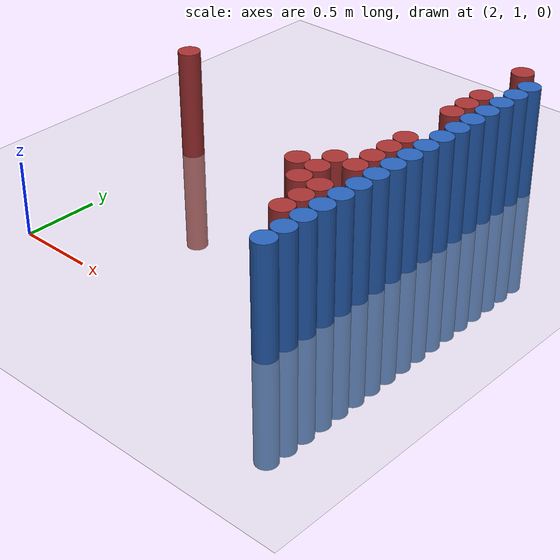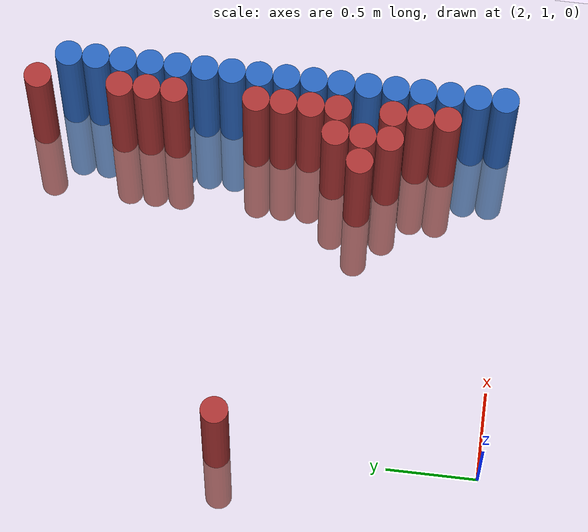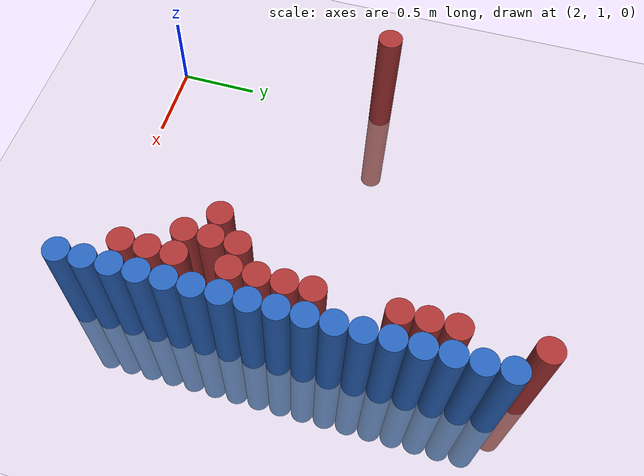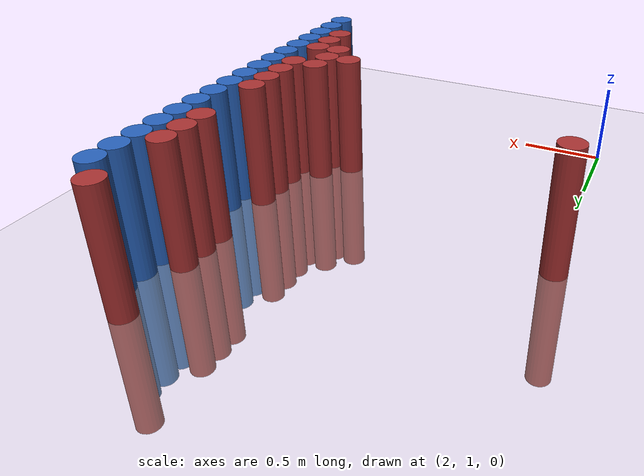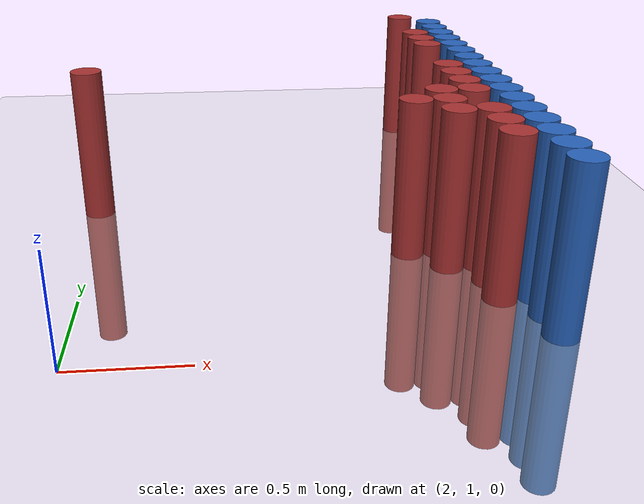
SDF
<sdf version="1.6">
 <world name="default">
  <model name="ground_plane">
   <static>1</static>
   <link name="link">
    <collision name="collision">
     <geometry><plane><normal>0 0 1</normal><size>100 100</size></plane></geometry>
     <surface><friction><ode><mu>100</mu><mu2>50</mu2></ode></friction></surface>
    </collision>
    <visual name="visual">
     <cast_shadows>0</cast_shadows>
     <geometry><plane><normal>0 0 1</normal><size>100 100</size></plane></geometry>
     <material>
      <script><uri>file://media/materials/scripts/gazebo.material</uri><name>Gazebo/Grey</name></script>
     </material>
    </visual>
   </link>
  </model>
  <model name="unit_cylinder_130">
   <static>1</static>
   <pose>3.925000 1.225000 0.000000 0.000000 0.000000 0.000000</pose>
   <link name="link">
    <inertial>
     <mass>1</mass>
     <inertia><ixx>0.145833</ixx><ixy>0</ixy><ixz>0</ixz><iyy>0.145833</iyy><iyz>0</iyz><izz>0.125</izz></inertia>
    </inertial>
    <collision name="collision">
     <geometry><cylinder><radius>0.075000</radius><length>1.5</length></cylinder></geometry>
    </collision>
    <visual name="visual">
     <geometry><cylinder><radius>0.075000</radius><length>1.5</length></cylinder></geometry>
     <material>
      <ambient>0.152000 0.379000 0.720000 1</ambient>
      <diffuse>0.152000 0.379000 0.720000 1</diffuse>
     </material>
     <material>
      <script><name>Gazebo/Grey</name><uri>file://media/materials/scripts/gazebo.material</uri></script>
     </material>
    </visual>
   </link>
  </model>
  <model name="unit_cylinder_132">
   <static>1</static>
   <pose>3.925000 1.375000 0.000000 0.000000 0.000000 0.000000</pose>
   <link name="link">
    <inertial>
     <mass>1</mass>
     <inertia><ixx>0.145833</ixx><ixy>0</ixy><ixz>0</ixz><iyy>0.145833</iyy><iyz>0</iyz><izz>0.125</izz></inertia>
    </inertial>
    <collision name="collision">
     <geometry><cylinder><radius>0.075000</radius><length>1.5</length></cylinder></geometry>
    </collision>
    <visual name="visual">
     <geometry><cylinder><radius>0.075000</radius><length>1.5</length></cylinder></geometry>
     <material>
      <ambient>0.152000 0.379000 0.720000 1</ambient>
      <diffuse>0.152000 0.379000 0.720000 1</diffuse>
     </material>
     <material>
      <script><name>Gazebo/Grey</name><uri>file://media/materials/scripts/gazebo.material</uri></script>
     </material>
    </visual>
   </link>
  </model>
  <model name="unit_cylinder_134">
   <static>1</static>
   <pose>3.925000 1.525000 0.000000 0.000000 0.000000 0.000000</pose>
   <link name="link">
    <inertial>
     <mass>1</mass>
     <inertia><ixx>0.145833</ixx><ixy>0</ixy><ixz>0</ixz><iyy>0.145833</iyy><iyz>0</iyz><izz>0.125</izz></inertia>
    </inertial>
    <collision name="collision">
     <geometry><cylinder><radius>0.075000</radius><length>1.5</length></cylinder></geometry>
    </collision>
    <visual name="visual">
     <geometry><cylinder><radius>0.075000</radius><length>1.5</length></cylinder></geometry>
     <material>
      <ambient>0.152000 0.379000 0.720000 1</ambient>
      <diffuse>0.152000 0.379000 0.720000 1</diffuse>
     </material>
     <material>
      <script><name>Gazebo/Grey</name><uri>file://media/materials/scripts/gazebo.material</uri></script>
     </material>
    </visual>
   </link>
  </model>
  <model name="unit_cylinder_136">
   <static>1</static>
   <pose>3.925000 1.675000 0.000000 0.000000 0.000000 0.000000</pose>
   <link name="link">
    <inertial>
     <mass>1</mass>
     <inertia><ixx>0.145833</ixx><ixy>0</ixy><ixz>0</ixz><iyy>0.145833</iyy><iyz>0</iyz><izz>0.125</izz></inertia>
    </inertial>
    <collision name="collision">
     <geometry><cylinder><radius>0.075000</radius><length>1.5</length></cylinder></geometry>
    </collision>
    <visual name="visual">
     <geometry><cylinder><radius>0.075000</radius><length>1.5</length></cylinder></geometry>
     <material>
      <ambient>0.152000 0.379000 0.720000 1</ambient>
      <diffuse>0.152000 0.379000 0.720000 1</diffuse>
     </material>
     <material>
      <script><name>Gazebo/Grey</name><uri>file://media/materials/scripts/gazebo.material</uri></script>
     </material>
    </visual>
   </link>
  </model>
  <model name="unit_cylinder_138">
   <static>1</static>
   <pose>3.925000 1.825000 0.000000 0.000000 0.000000 0.000000</pose>
   <link name="link">
    <inertial>
     <mass>1</mass>
     <inertia><ixx>0.145833</ixx><ixy>0</ixy><ixz>0</ixz><iyy>0.145833</iyy><iyz>0</iyz><izz>0.125</izz></inertia>
    </inertial>
    <collision name="collision">
     <geometry><cylinder><radius>0.075000</radius><length>1.5</length></cylinder></geometry>
    </collision>
    <visual name="visual">
     <geometry><cylinder><radius>0.075000</radius><length>1.5</length></cylinder></geometry>
     <material>
      <ambient>0.152000 0.379000 0.720000 1</ambient>
      <diffuse>0.152000 0.379000 0.720000 1</diffuse>
     </material>
     <material>
      <script><name>Gazebo/Grey</name><uri>file://media/materials/scripts/gazebo.material</uri></script>
     </material>
    </visual>
   </link>
  </model>
  <model name="unit_cylinder_140">
   <static>1</static>
   <pose>3.925000 1.975000 0.000000 0.000000 0.000000 0.000000</pose>
   <link name="link">
    <inertial>
     <mass>1</mass>
     <inertia><ixx>0.145833</ixx><ixy>0</ixy><ixz>0</ixz><iyy>0.145833</iyy><iyz>0</iyz><izz>0.125</izz></inertia>
    </inertial>
    <collision name="collision">
     <geometry><cylinder><radius>0.075000</radius><length>1.5</length></cylinder></geometry>
    </collision>
    <visual name="visual">
     <geometry><cylinder><radius>0.075000</radius><length>1.5</length></cylinder></geometry>
     <material>
      <ambient>0.152000 0.379000 0.720000 1</ambient>
      <diffuse>0.152000 0.379000 0.720000 1</diffuse>
     </material>
     <material>
      <script><name>Gazebo/Grey</name><uri>file://media/materials/scripts/gazebo.material</uri></script>
     </material>
    </visual>
   </link>
  </model>
  <model name="unit_cylinder_142">
   <static>1</static>
   <pose>3.925000 2.125000 0.000000 0.000000 0.000000 0.000000</pose>
   <link name="link">
    <inertial>
     <mass>1</mass>
     <inertia><ixx>0.145833</ixx><ixy>0</ixy><ixz>0</ixz><iyy>0.145833</iyy><iyz>0</iyz><izz>0.125</izz></inertia>
    </inertial>
    <collision name="collision">
     <geometry><cylinder><radius>0.075000</radius><length>1.5</length></cylinder></geometry>
    </collision>
    <visual name="visual">
     <geometry><cylinder><radius>0.075000</radius><length>1.5</length></cylinder></geometry>
     <material>
      <ambient>0.152000 0.379000 0.720000 1</ambient>
      <diffuse>0.152000 0.379000 0.720000 1</diffuse>
     </material>
     <material>
      <script><name>Gazebo/Grey</name><uri>file://media/materials/scripts/gazebo.material</uri></script>
     </material>
    </visual>
   </link>
  </model>
  <model name="unit_cylinder_144">
   <static>1</static>
   <pose>3.925000 2.275000 0.000000 0.000000 0.000000 0.000000</pose>
   <link name="link">
    <inertial>
     <mass>1</mass>
     <inertia><ixx>0.145833</ixx><ixy>0</ixy><ixz>0</ixz><iyy>0.145833</iyy><iyz>0</iyz><izz>0.125</izz></inertia>
    </inertial>
    <collision name="collision">
     <geometry><cylinder><radius>0.075000</radius><length>1.5</length></cylinder></geometry>
    </collision>
    <visual name="visual">
     <geometry><cylinder><radius>0.075000</radius><length>1.5</length></cylinder></geometry>
     <material>
      <ambient>0.152000 0.379000 0.720000 1</ambient>
      <diffuse>0.152000 0.379000 0.720000 1</diffuse>
     </material>
     <material>
      <script><name>Gazebo/Grey</name><uri>file://media/materials/scripts/gazebo.material</uri></script>
     </material>
    </visual>
   </link>
  </model>
  <model name="unit_cylinder_146">
   <static>1</static>
   <pose>3.925000 2.425000 0.000000 0.000000 0.000000 0.000000</pose>
   <link name="link">
    <inertial>
     <mass>1</mass>
     <inertia><ixx>0.145833</ixx><ixy>0</ixy><ixz>0</ixz><iyy>0.145833</iyy><iyz>0</iyz><izz>0.125</izz></inertia>
    </inertial>
    <collision name="collision">
     <geometry><cylinder><radius>0.075000</radius><length>1.5</length></cylinder></geometry>
    </collision>
    <visual name="visual">
     <geometry><cylinder><radius>0.075000</radius><length>1.5</length></cylinder></geometry>
     <material>
      <ambient>0.152000 0.379000 0.720000 1</ambient>
      <diffuse>0.152000 0.379000 0.720000 1</diffuse>
     </material>
     <material>
      <script><name>Gazebo/Grey</name><uri>file://media/materials/scripts/gazebo.material</uri></script>
     </material>
    </visual>
   </link>
  </model>
  <model name="unit_cylinder_148">
   <static>1</static>
   <pose>3.925000 2.575000 0.000000 0.000000 0.000000 0.000000</pose>
   <link name="link">
    <inertial>
     <mass>1</mass>
     <inertia><ixx>0.145833</ixx><ixy>0</ixy><ixz>0</ixz><iyy>0.145833</iyy><iyz>0</iyz><izz>0.125</izz></inertia>
    </inertial>
    <collision name="collision">
     <geometry><cylinder><radius>0.075000</radius><length>1.5</length></cylinder></geometry>
    </collision>
    <visual name="visual">
     <geometry><cylinder><radius>0.075000</radius><length>1.5</length></cylinder></geometry>
     <material>
      <ambient>0.152000 0.379000 0.720000 1</ambient>
      <diffuse>0.152000 0.379000 0.720000 1</diffuse>
     </material>
     <material>
      <script><name>Gazebo/Grey</name><uri>file://media/materials/scripts/gazebo.material</uri></script>
     </material>
    </visual>
   </link>
  </model>
  <model name="unit_cylinder_150">
   <static>1</static>
   <pose>3.925000 2.725000 0.000000 0.000000 0.000000 0.000000</pose>
   <link name="link">
    <inertial>
     <mass>1</mass>
     <inertia><ixx>0.145833</ixx><ixy>0</ixy><ixz>0</ixz><iyy>0.145833</iyy><iyz>0</iyz><izz>0.125</izz></inertia>
    </inertial>
    <collision name="collision">
     <geometry><cylinder><radius>0.075000</radius><length>1.5</length></cylinder></geometry>
    </collision>
    <visual name="visual">
     <geometry><cylinder><radius>0.075000</radius><length>1.5</length></cylinder></geometry>
     <material>
      <ambient>0.152000 0.379000 0.720000 1</ambient>
      <diffuse>0.152000 0.379000 0.720000 1</diffuse>
     </material>
     <material>
      <script><name>Gazebo/Grey</name><uri>file://media/materials/scripts/gazebo.material</uri></script>
     </material>
    </visual>
   </link>
  </model>
  <model name="unit_cylinder_152">
   <static>1</static>
   <pose>3.925000 2.875000 0.000000 0.000000 0.000000 0.000000</pose>
   <link name="link">
    <inertial>
     <mass>1</mass>
     <inertia><ixx>0.145833</ixx><ixy>0</ixy><ixz>0</ixz><iyy>0.145833</iyy><iyz>0</iyz><izz>0.125</izz></inertia>
    </inertial>
    <collision name="collision">
     <geometry><cylinder><radius>0.075000</radius><length>1.5</length></cylinder></geometry>
    </collision>
    <visual name="visual">
     <geometry><cylinder><radius>0.075000</radius><length>1.5</length></cylinder></geometry>
     <material>
      <ambient>0.152000 0.379000 0.720000 1</ambient>
      <diffuse>0.152000 0.379000 0.720000 1</diffuse>
     </material>
     <material>
      <script><name>Gazebo/Grey</name><uri>file://media/materials/scripts/gazebo.material</uri></script>
     </material>
    </visual>
   </link>
  </model>
  <model name="unit_cylinder_154">
   <static>1</static>
   <pose>3.925000 3.025000 0.000000 0.000000 0.000000 0.000000</pose>
   <link name="link">
    <inertial>
     <mass>1</mass>
     <inertia><ixx>0.145833</ixx><ixy>0</ixy><ixz>0</ixz><iyy>0.145833</iyy><iyz>0</iyz><izz>0.125</izz></inertia>
    </inertial>
    <collision name="collision">
     <geometry><cylinder><radius>0.075000</radius><length>1.5</length></cylinder></geometry>
    </collision>
    <visual name="visual">
     <geometry><cylinder><radius>0.075000</radius><length>1.5</length></cylinder></geometry>
     <material>
      <ambient>0.152000 0.379000 0.720000 1</ambient>
      <diffuse>0.152000 0.379000 0.720000 1</diffuse>
     </material>
     <material>
      <script><name>Gazebo/Grey</name><uri>file://media/materials/scripts/gazebo.material</uri></script>
     </material>
    </visual>
   </link>
  </model>
  <model name="unit_cylinder_156">
   <static>1</static>
   <pose>3.925000 3.175000 0.000000 0.000000 0.000000 0.000000</pose>
   <link name="link">
    <inertial>
     <mass>1</mass>
     <inertia><ixx>0.145833</ixx><ixy>0</ixy><ixz>0</ixz><iyy>0.145833</iyy><iyz>0</iyz><izz>0.125</izz></inertia>
    </inertial>
    <collision name="collision">
     <geometry><cylinder><radius>0.075000</radius><length>1.5</length></cylinder></geometry>
    </collision>
    <visual name="visual">
     <geometry><cylinder><radius>0.075000</radius><length>1.5</length></cylinder></geometry>
     <material>
      <ambient>0.152000 0.379000 0.720000 1</ambient>
      <diffuse>0.152000 0.379000 0.720000 1</diffuse>
     </material>
     <material>
      <script><name>Gazebo/Grey</name><uri>file://media/materials/scripts/gazebo.material</uri></script>
     </material>
    </visual>
   </link>
  </model>
  <model name="unit_cylinder_158">
   <static>1</static>
   <pose>3.925000 3.325000 0.000000 0.000000 0.000000 0.000000</pose>
   <link name="link">
    <inertial>
     <mass>1</mass>
     <inertia><ixx>0.145833</ixx><ixy>0</ixy><ixz>0</ixz><iyy>0.145833</iyy><iyz>0</iyz><izz>0.125</izz></inertia>
    </inertial>
    <collision name="collision">
     <geometry><cylinder><radius>0.075000</radius><length>1.5</length></cylinder></geometry>
    </collision>
    <visual name="visual">
     <geometry><cylinder><radius>0.075000</radius><length>1.5</length></cylinder></geometry>
     <material>
      <ambient>0.152000 0.379000 0.720000 1</ambient>
      <diffuse>0.152000 0.379000 0.720000 1</diffuse>
     </material>
     <material>
      <script><name>Gazebo/Grey</name><uri>file://media/materials/scripts/gazebo.material</uri></script>
     </material>
    </visual>
   </link>
  </model>
  <model name="unit_cylinder_160">
   <static>1</static>
   <pose>3.925000 3.475000 0.000000 0.000000 0.000000 0.000000</pose>
   <link name="link">
    <inertial>
     <mass>1</mass>
     <inertia><ixx>0.145833</ixx><ixy>0</ixy><ixz>0</ixz><iyy>0.145833</iyy><iyz>0</iyz><izz>0.125</izz></inertia>
    </inertial>
    <collision name="collision">
     <geometry><cylinder><radius>0.075000</radius><length>1.5</length></cylinder></geometry>
    </collision>
    <visual name="visual">
     <geometry><cylinder><radius>0.075000</radius><length>1.5</length></cylinder></geometry>
     <material>
      <ambient>0.152000 0.379000 0.720000 1</ambient>
      <diffuse>0.152000 0.379000 0.720000 1</diffuse>
     </material>
     <material>
      <script><name>Gazebo/Grey</name><uri>file://media/materials/scripts/gazebo.material</uri></script>
     </material>
    </visual>
   </link>
  </model>
  <model name="unit_cylinder_379">
   <static>1</static>
   <pose>1.975000 2.425000 0.000000 0.000000 0.000000 0.000000</pose>
   <link name="link">
    <inertial>
     <mass>1</mass>
     <inertia><ixx>0.145833</ixx><ixy>0</ixy><ixz>0</ixz><iyy>0.145833</iyy><iyz>0</iyz><izz>0.125</izz></inertia>
    </inertial>
    <collision name="collision">
     <geometry><cylinder><radius>0.075000</radius><length>1.5</length></cylinder></geometry>
    </collision>
    <visual name="visual">
     <geometry><cylinder><radius>0.075000</radius><length>1.5</length></cylinder></geometry>
     <material>
      <ambient>0.648000 0.192000 0.192000 1</ambient>
      <diffuse>0.648000 0.192000 0.192000 1</diffuse>
     </material>
     <material>
      <script><name>Gazebo/Grey</name><uri>file://media/materials/scripts/gazebo.material</uri></script>
     </material>
    </visual>
   </link>
  </model>
  <model name="unit_cylinder_410">
   <static>1</static>
   <pose>3.475000 1.825000 0.000000 0.000000 0.000000 0.000000</pose>
   <link name="link">
    <inertial>
     <mass>1</mass>
     <inertia><ixx>0.145833</ixx><ixy>0</ixy><ixz>0</ixz><iyy>0.145833</iyy><iyz>0</iyz><izz>0.125</izz></inertia>
    </inertial>
    <collision name="collision">
     <geometry><cylinder><radius>0.075000</radius><length>1.5</length></cylinder></geometry>
    </collision>
    <visual name="visual">
     <geometry><cylinder><radius>0.075000</radius><length>1.5</length></cylinder></geometry>
     <material>
      <ambient>0.648000 0.192000 0.192000 1</ambient>
      <diffuse>0.648000 0.192000 0.192000 1</diffuse>
     </material>
     <material>
      <script><name>Gazebo/Grey</name><uri>file://media/materials/scripts/gazebo.material</uri></script>
     </material>
    </visual>
   </link>
  </model>
  <model name="unit_cylinder_415">
   <static>1</static>
   <pose>3.625000 1.675000 0.000000 0.000000 0.000000 0.000000</pose>
   <link name="link">
    <inertial>
     <mass>1</mass>
     <inertia><ixx>0.145833</ixx><ixy>0</ixy><ixz>0</ixz><iyy>0.145833</iyy><iyz>0</iyz><izz>0.125</izz></inertia>
    </inertial>
    <collision name="collision">
     <geometry><cylinder><radius>0.075000</radius><length>1.5</length></cylinder></geometry>
    </collision>
    <visual name="visual">
     <geometry><cylinder><radius>0.075000</radius><length>1.5</length></cylinder></geometry>
     <material>
      <ambient>0.648000 0.192000 0.192000 1</ambient>
      <diffuse>0.648000 0.192000 0.192000 1</diffuse>
     </material>
     <material>
      <script><name>Gazebo/Grey</name><uri>file://media/materials/scripts/gazebo.material</uri></script>
     </material>
    </visual>
   </link>
  </model>
  <model name="unit_cylinder_416">
   <static>1</static>
   <pose>3.625000 1.825000 0.000000 0.000000 0.000000 0.000000</pose>
   <link name="link">
    <inertial>
     <mass>1</mass>
     <inertia><ixx>0.145833</ixx><ixy>0</ixy><ixz>0</ixz><iyy>0.145833</iyy><iyz>0</iyz><izz>0.125</izz></inertia>
    </inertial>
    <collision name="collision">
     <geometry><cylinder><radius>0.075000</radius><length>1.5</length></cylinder></geometry>
    </collision>
    <visual name="visual">
     <geometry><cylinder><radius>0.075000</radius><length>1.5</length></cylinder></geometry>
     <material>
      <ambient>0.648000 0.192000 0.192000 1</ambient>
      <diffuse>0.648000 0.192000 0.192000 1</diffuse>
     </material>
     <material>
      <script><name>Gazebo/Grey</name><uri>file://media/materials/scripts/gazebo.material</uri></script>
     </material>
    </visual>
   </link>
  </model>
  <model name="unit_cylinder_417">
   <static>1</static>
   <pose>3.625000 1.975000 0.000000 0.000000 0.000000 0.000000</pose>
   <link name="link">
    <inertial>
     <mass>1</mass>
     <inertia><ixx>0.145833</ixx><ixy>0</ixy><ixz>0</ixz><iyy>0.145833</iyy><iyz>0</iyz><izz>0.125</izz></inertia>
    </inertial>
    <collision name="collision">
     <geometry><cylinder><radius>0.075000</radius><length>1.5</length></cylinder></geometry>
    </collision>
    <visual name="visual">
     <geometry><cylinder><radius>0.075000</radius><length>1.5</length></cylinder></geometry>
     <material>
      <ambient>0.648000 0.192000 0.192000 1</ambient>
      <diffuse>0.648000 0.192000 0.192000 1</diffuse>
     </material>
     <material>
      <script><name>Gazebo/Grey</name><uri>file://media/materials/scripts/gazebo.material</uri></script>
     </material>
    </visual>
   </link>
  </model>
  <model name="unit_cylinder_426">
   <static>1</static>
   <pose>3.775000 1.375000 0.000000 0.000000 0.000000 0.000000</pose>
   <link name="link">
    <inertial>
     <mass>1</mass>
     <inertia><ixx>0.145833</ixx><ixy>0</ixy><ixz>0</ixz><iyy>0.145833</iyy><iyz>0</iyz><izz>0.125</izz></inertia>
    </inertial>
    <collision name="collision">
     <geometry><cylinder><radius>0.075000</radius><length>1.5</length></cylinder></geometry>
    </collision>
    <visual name="visual">
     <geometry><cylinder><radius>0.075000</radius><length>1.5</length></cylinder></geometry>
     <material>
      <ambient>0.648000 0.192000 0.192000 1</ambient>
      <diffuse>0.648000 0.192000 0.192000 1</diffuse>
     </material>
     <material>
      <script><name>Gazebo/Grey</name><uri>file://media/materials/scripts/gazebo.material</uri></script>
     </material>
    </visual>
   </link>
  </model>
  <model name="unit_cylinder_427">
   <static>1</static>
   <pose>3.775000 1.525000 0.000000 0.000000 0.000000 0.000000</pose>
   <link name="link">
    <inertial>
     <mass>1</mass>
     <inertia><ixx>0.145833</ixx><ixy>0</ixy><ixz>0</ixz><iyy>0.145833</iyy><iyz>0</iyz><izz>0.125</izz></inertia>
    </inertial>
    <collision name="collision">
     <geometry><cylinder><radius>0.075000</radius><length>1.5</length></cylinder></geometry>
    </collision>
    <visual name="visual">
     <geometry><cylinder><radius>0.075000</radius><length>1.5</length></cylinder></geometry>
     <material>
      <ambient>0.648000 0.192000 0.192000 1</ambient>
      <diffuse>0.648000 0.192000 0.192000 1</diffuse>
     </material>
     <material>
      <script><name>Gazebo/Grey</name><uri>file://media/materials/scripts/gazebo.material</uri></script>
     </material>
    </visual>
   </link>
  </model>
  <model name="unit_cylinder_428">
   <static>1</static>
   <pose>3.775000 1.675000 0.000000 0.000000 0.000000 0.000000</pose>
   <link name="link">
    <inertial>
     <mass>1</mass>
     <inertia><ixx>0.145833</ixx><ixy>0</ixy><ixz>0</ixz><iyy>0.145833</iyy><iyz>0</iyz><izz>0.125</izz></inertia>
    </inertial>
    <collision name="collision">
     <geometry><cylinder><radius>0.075000</radius><length>1.5</length></cylinder></geometry>
    </collision>
    <visual name="visual">
     <geometry><cylinder><radius>0.075000</radius><length>1.5</length></cylinder></geometry>
     <material>
      <ambient>0.648000 0.192000 0.192000 1</ambient>
      <diffuse>0.648000 0.192000 0.192000 1</diffuse>
     </material>
     <material>
      <script><name>Gazebo/Grey</name><uri>file://media/materials/scripts/gazebo.material</uri></script>
     </material>
    </visual>
   </link>
  </model>
  <model name="unit_cylinder_429">
   <static>1</static>
   <pose>3.775000 1.975000 0.000000 0.000000 0.000000 0.000000</pose>
   <link name="link">
    <inertial>
     <mass>1</mass>
     <inertia><ixx>0.145833</ixx><ixy>0</ixy><ixz>0</ixz><iyy>0.145833</iyy><iyz>0</iyz><izz>0.125</izz></inertia>
    </inertial>
    <collision name="collision">
     <geometry><cylinder><radius>0.075000</radius><length>1.5</length></cylinder></geometry>
    </collision>
    <visual name="visual">
     <geometry><cylinder><radius>0.075000</radius><length>1.5</length></cylinder></geometry>
     <material>
      <ambient>0.648000 0.192000 0.192000 1</ambient>
      <diffuse>0.648000 0.192000 0.192000 1</diffuse>
     </material>
     <material>
      <script><name>Gazebo/Grey</name><uri>file://media/materials/scripts/gazebo.material</uri></script>
     </material>
    </visual>
   </link>
  </model>
  <model name="unit_cylinder_430">
   <static>1</static>
   <pose>3.775000 2.125000 0.000000 0.000000 0.000000 0.000000</pose>
   <link name="link">
    <inertial>
     <mass>1</mass>
     <inertia><ixx>0.145833</ixx><ixy>0</ixy><ixz>0</ixz><iyy>0.145833</iyy><iyz>0</iyz><izz>0.125</izz></inertia>
    </inertial>
    <collision name="collision">
     <geometry><cylinder><radius>0.075000</radius><length>1.5</length></cylinder></geometry>
    </collision>
    <visual name="visual">
     <geometry><cylinder><radius>0.075000</radius><length>1.5</length></cylinder></geometry>
     <material>
      <ambient>0.648000 0.192000 0.192000 1</ambient>
      <diffuse>0.648000 0.192000 0.192000 1</diffuse>
     </material>
     <material>
      <script><name>Gazebo/Grey</name><uri>file://media/materials/scripts/gazebo.material</uri></script>
     </material>
    </visual>
   </link>
  </model>
  <model name="unit_cylinder_431">
   <static>1</static>
   <pose>3.775000 2.275000 0.000000 0.000000 0.000000 0.000000</pose>
   <link name="link">
    <inertial>
     <mass>1</mass>
     <inertia><ixx>0.145833</ixx><ixy>0</ixy><ixz>0</ixz><iyy>0.145833</iyy><iyz>0</iyz><izz>0.125</izz></inertia>
    </inertial>
    <collision name="collision">
     <geometry><cylinder><radius>0.075000</radius><length>1.5</length></cylinder></geometry>
    </collision>
    <visual name="visual">
     <geometry><cylinder><radius>0.075000</radius><length>1.5</length></cylinder></geometry>
     <material>
      <ambient>0.648000 0.192000 0.192000 1</ambient>
      <diffuse>0.648000 0.192000 0.192000 1</diffuse>
     </material>
     <material>
      <script><name>Gazebo/Grey</name><uri>file://media/materials/scripts/gazebo.material</uri></script>
     </material>
    </visual>
   </link>
  </model>
  <model name="unit_cylinder_432">
   <static>1</static>
   <pose>3.775000 2.425000 0.000000 0.000000 0.000000 0.000000</pose>
   <link name="link">
    <inertial>
     <mass>1</mass>
     <inertia><ixx>0.145833</ixx><ixy>0</ixy><ixz>0</ixz><iyy>0.145833</iyy><iyz>0</iyz><izz>0.125</izz></inertia>
    </inertial>
    <collision name="collision">
     <geometry><cylinder><radius>0.075000</radius><length>1.5</length></cylinder></geometry>
    </collision>
    <visual name="visual">
     <geometry><cylinder><radius>0.075000</radius><length>1.5</length></cylinder></geometry>
     <material>
      <ambient>0.648000 0.192000 0.192000 1</ambient>
      <diffuse>0.648000 0.192000 0.192000 1</diffuse>
     </material>
     <material>
      <script><name>Gazebo/Grey</name><uri>file://media/materials/scripts/gazebo.material</uri></script>
     </material>
    </visual>
   </link>
  </model>
  <model name="unit_cylinder_433">
   <static>1</static>
   <pose>3.775000 2.875000 0.000000 0.000000 0.000000 0.000000</pose>
   <link name="link">
    <inertial>
     <mass>1</mass>
     <inertia><ixx>0.145833</ixx><ixy>0</ixy><ixz>0</ixz><iyy>0.145833</iyy><iyz>0</iyz><izz>0.125</izz></inertia>
    </inertial>
    <collision name="collision">
     <geometry><cylinder><radius>0.075000</radius><length>1.5</length></cylinder></geometry>
    </collision>
    <visual name="visual">
     <geometry><cylinder><radius>0.075000</radius><length>1.5</length></cylinder></geometry>
     <material>
      <ambient>0.648000 0.192000 0.192000 1</ambient>
      <diffuse>0.648000 0.192000 0.192000 1</diffuse>
     </material>
     <material>
      <script><name>Gazebo/Grey</name><uri>file://media/materials/scripts/gazebo.material</uri></script>
     </material>
    </visual>
   </link>
  </model>
  <model name="unit_cylinder_434">
   <static>1</static>
   <pose>3.775000 3.025000 0.000000 0.000000 0.000000 0.000000</pose>
   <link name="link">
    <inertial>
     <mass>1</mass>
     <inertia><ixx>0.145833</ixx><ixy>0</ixy><ixz>0</ixz><iyy>0.145833</iyy><iyz>0</iyz><izz>0.125</izz></inertia>
    </inertial>
    <collision name="collision">
     <geometry><cylinder><radius>0.075000</radius><length>1.5</length></cylinder></geometry>
    </collision>
    <visual name="visual">
     <geometry><cylinder><radius>0.075000</radius><length>1.5</length></cylinder></geometry>
     <material>
      <ambient>0.648000 0.192000 0.192000 1</ambient>
      <diffuse>0.648000 0.192000 0.192000 1</diffuse>
     </material>
     <material>
      <script><name>Gazebo/Grey</name><uri>file://media/materials/scripts/gazebo.material</uri></script>
     </material>
    </visual>
   </link>
  </model>
  <model name="unit_cylinder_435">
   <static>1</static>
   <pose>3.775000 3.175000 0.000000 0.000000 0.000000 0.000000</pose>
   <link name="link">
    <inertial>
     <mass>1</mass>
     <inertia><ixx>0.145833</ixx><ixy>0</ixy><ixz>0</ixz><iyy>0.145833</iyy><iyz>0</iyz><izz>0.125</izz></inertia>
    </inertial>
    <collision name="collision">
     <geometry><cylinder><radius>0.075000</radius><length>1.5</length></cylinder></geometry>
    </collision>
    <visual name="visual">
     <geometry><cylinder><radius>0.075000</radius><length>1.5</length></cylinder></geometry>
     <material>
      <ambient>0.648000 0.192000 0.192000 1</ambient>
      <diffuse>0.648000 0.192000 0.192000 1</diffuse>
     </material>
     <material>
      <script><name>Gazebo/Grey</name><uri>file://media/materials/scripts/gazebo.material</uri></script>
     </material>
    </visual>
   </link>
  </model>
  <model name="unit_cylinder_436">
   <static>1</static>
   <pose>3.775000 3.625000 0.000000 0.000000 0.000000 0.000000</pose>
   <link name="link">
    <inertial>
     <mass>1</mass>
     <inertia><ixx>0.145833</ixx><ixy>0</ixy><ixz>0</ixz><iyy>0.145833</iyy><iyz>0</iyz><izz>0.125</izz></inertia>
    </inertial>
    <collision name="collision">
     <geometry><cylinder><radius>0.075000</radius><length>1.5</length></cylinder></geometry>
    </collision>
    <visual name="visual">
     <geometry><cylinder><radius>0.075000</radius><length>1.5</length></cylinder></geometry>
     <material>
      <ambient>0.648000 0.192000 0.192000 1</ambient>
      <diffuse>0.648000 0.192000 0.192000 1</diffuse>
     </material>
     <material>
      <script><name>Gazebo/Grey</name><uri>file://media/materials/scripts/gazebo.material</uri></script>
     </material>
    </visual>
   </link>
  </model>
  <model name="unit_cylinder_466">
   <static>1</static>
   <pose>3.925000 1.075000 0.000000 0.000000 0.000000 0.000000</pose>
   <link name="link">
    <inertial>
     <mass>1</mass>
     <inertia><ixx>0.145833</ixx><ixy>0</ixy><ixz>0</ixz><iyy>0.145833</iyy><iyz>0</iyz><izz>0.125</izz></inertia>
    </inertial>
    <collision name="collision">
     <geometry><cylinder><radius>0.075000</radius><length>1.5</length></cylinder></geometry>
    </collision>
    <visual name="visual">
     <geometry><cylinder><radius>0.075000</radius><length>1.5</length></cylinder></geometry>
     <material>
      <ambient>0.152000 0.379000 0.720000 1</ambient>
      <diffuse>0.152000 0.379000 0.720000 1</diffuse>
     </material>
     <material>
      <script><name>Gazebo/Grey</name><uri>file://media/materials/scripts/gazebo.material</uri></script>
     </material>
    </visual>
   </link>
  </model>
  <model name="unit_cylinder_467">
   <static>1</static>
   <pose>3.925000 1.225000 0.000000 0.000000 0.000000 0.000000</pose>
   <link name="link">
    <inertial>
     <mass>1</mass>
     <inertia><ixx>0.145833</ixx><ixy>0</ixy><ixz>0</ixz><iyy>0.145833</iyy><iyz>0</iyz><izz>0.125</izz></inertia>
    </inertial>
    <collision name="collision">
     <geometry><cylinder><radius>0.075000</radius><length>1.5</length></cylinder></geometry>
    </collision>
    <visual name="visual">
     <geometry><cylinder><radius>0.075000</radius><length>1.5</length></cylinder></geometry>
     <material>
      <ambient>0.152000 0.379000 0.720000 1</ambient>
      <diffuse>0.152000 0.379000 0.720000 1</diffuse>
     </material>
     <material>
      <script><name>Gazebo/Grey</name><uri>file://media/materials/scripts/gazebo.material</uri></script>
     </material>
    </visual>
   </link>
  </model>
  <model name="unit_cylinder_468">
   <static>1</static>
   <pose>3.925000 1.375000 0.000000 0.000000 0.000000 0.000000</pose>
   <link name="link">
    <inertial>
     <mass>1</mass>
     <inertia><ixx>0.145833</ixx><ixy>0</ixy><ixz>0</ixz><iyy>0.145833</iyy><iyz>0</iyz><izz>0.125</izz></inertia>
    </inertial>
    <collision name="collision">
     <geometry><cylinder><radius>0.075000</radius><length>1.5</length></cylinder></geometry>
    </collision>
    <visual name="visual">
     <geometry><cylinder><radius>0.075000</radius><length>1.5</length></cylinder></geometry>
     <material>
      <ambient>0.152000 0.379000 0.720000 1</ambient>
      <diffuse>0.152000 0.379000 0.720000 1</diffuse>
     </material>
     <material>
      <script><name>Gazebo/Grey</name><uri>file://media/materials/scripts/gazebo.material</uri></script>
     </material>
    </visual>
   </link>
  </model>
  <model name="unit_cylinder_469">
   <static>1</static>
   <pose>3.925000 1.525000 0.000000 0.000000 0.000000 0.000000</pose>
   <link name="link">
    <inertial>
     <mass>1</mass>
     <inertia><ixx>0.145833</ixx><ixy>0</ixy><ixz>0</ixz><iyy>0.145833</iyy><iyz>0</iyz><izz>0.125</izz></inertia>
    </inertial>
    <collision name="collision">
     <geometry><cylinder><radius>0.075000</radius><length>1.5</length></cylinder></geometry>
    </collision>
    <visual name="visual">
     <geometry><cylinder><radius>0.075000</radius><length>1.5</length></cylinder></geometry>
     <material>
      <ambient>0.152000 0.379000 0.720000 1</ambient>
      <diffuse>0.152000 0.379000 0.720000 1</diffuse>
     </material>
     <material>
      <script><name>Gazebo/Grey</name><uri>file://media/materials/scripts/gazebo.material</uri></script>
     </material>
    </visual>
   </link>
  </model>
  <model name="unit_cylinder_470">
   <static>1</static>
   <pose>3.925000 1.675000 0.000000 0.000000 0.000000 0.000000</pose>
   <link name="link">
    <inertial>
     <mass>1</mass>
     <inertia><ixx>0.145833</ixx><ixy>0</ixy><ixz>0</ixz><iyy>0.145833</iyy><iyz>0</iyz><izz>0.125</izz></inertia>
    </inertial>
    <collision name="collision">
     <geometry><cylinder><radius>0.075000</radius><length>1.5</length></cylinder></geometry>
    </collision>
    <visual name="visual">
     <geometry><cylinder><radius>0.075000</radius><length>1.5</length></cylinder></geometry>
     <material>
      <ambient>0.152000 0.379000 0.720000 1</ambient>
      <diffuse>0.152000 0.379000 0.720000 1</diffuse>
     </material>
     <material>
      <script><name>Gazebo/Grey</name><uri>file://media/materials/scripts/gazebo.material</uri></script>
     </material>
    </visual>
   </link>
  </model>
  <model name="unit_cylinder_471">
   <static>1</static>
   <pose>3.925000 1.825000 0.000000 0.000000 0.000000 0.000000</pose>
   <link name="link">
    <inertial>
     <mass>1</mass>
     <inertia><ixx>0.145833</ixx><ixy>0</ixy><ixz>0</ixz><iyy>0.145833</iyy><iyz>0</iyz><izz>0.125</izz></inertia>
    </inertial>
    <collision name="collision">
     <geometry><cylinder><radius>0.075000</radius><length>1.5</length></cylinder></geometry>
    </collision>
    <visual name="visual">
     <geometry><cylinder><radius>0.075000</radius><length>1.5</length></cylinder></geometry>
     <material>
      <ambient>0.152000 0.379000 0.720000 1</ambient>
      <diffuse>0.152000 0.379000 0.720000 1</diffuse>
     </material>
     <material>
      <script><name>Gazebo/Grey</name><uri>file://media/materials/scripts/gazebo.material</uri></script>
     </material>
    </visual>
   </link>
  </model>
  <model name="unit_cylinder_472">
   <static>1</static>
   <pose>3.925000 1.975000 0.000000 0.000000 0.000000 0.000000</pose>
   <link name="link">
    <inertial>
     <mass>1</mass>
     <inertia><ixx>0.145833</ixx><ixy>0</ixy><ixz>0</ixz><iyy>0.145833</iyy><iyz>0</iyz><izz>0.125</izz></inertia>
    </inertial>
    <collision name="collision">
     <geometry><cylinder><radius>0.075000</radius><length>1.5</length></cylinder></geometry>
    </collision>
    <visual name="visual">
     <geometry><cylinder><radius>0.075000</radius><length>1.5</length></cylinder></geometry>
     <material>
      <ambient>0.152000 0.379000 0.720000 1</ambient>
      <diffuse>0.152000 0.379000 0.720000 1</diffuse>
     </material>
     <material>
      <script><name>Gazebo/Grey</name><uri>file://media/materials/scripts/gazebo.material</uri></script>
     </material>
    </visual>
   </link>
  </model>
  <model name="unit_cylinder_473">
   <static>1</static>
   <pose>3.925000 2.125000 0.000000 0.000000 0.000000 0.000000</pose>
   <link name="link">
    <inertial>
     <mass>1</mass>
     <inertia><ixx>0.145833</ixx><ixy>0</ixy><ixz>0</ixz><iyy>0.145833</iyy><iyz>0</iyz><izz>0.125</izz></inertia>
    </inertial>
    <collision name="collision">
     <geometry><cylinder><radius>0.075000</radius><length>1.5</length></cylinder></geometry>
    </collision>
    <visual name="visual">
     <geometry><cylinder><radius>0.075000</radius><length>1.5</length></cylinder></geometry>
     <material>
      <ambient>0.152000 0.379000 0.720000 1</ambient>
      <diffuse>0.152000 0.379000 0.720000 1</diffuse>
     </material>
     <material>
      <script><name>Gazebo/Grey</name><uri>file://media/materials/scripts/gazebo.material</uri></script>
     </material>
    </visual>
   </link>
  </model>
  <model name="unit_cylinder_474">
   <static>1</static>
   <pose>3.925000 2.275000 0.000000 0.000000 0.000000 0.000000</pose>
   <link name="link">
    <inertial>
     <mass>1</mass>
     <inertia><ixx>0.145833</ixx><ixy>0</ixy><ixz>0</ixz><iyy>0.145833</iyy><iyz>0</iyz><izz>0.125</izz></inertia>
    </inertial>
    <collision name="collision">
     <geometry><cylinder><radius>0.075000</radius><length>1.5</length></cylinder></geometry>
    </collision>
    <visual name="visual">
     <geometry><cylinder><radius>0.075000</radius><length>1.5</length></cylinder></geometry>
     <material>
      <ambient>0.152000 0.379000 0.720000 1</ambient>
      <diffuse>0.152000 0.379000 0.720000 1</diffuse>
     </material>
     <material>
      <script><name>Gazebo/Grey</name><uri>file://media/materials/scripts/gazebo.material</uri></script>
     </material>
    </visual>
   </link>
  </model>
  <model name="unit_cylinder_475">
   <static>1</static>
   <pose>3.925000 2.425000 0.000000 0.000000 0.000000 0.000000</pose>
   <link name="link">
    <inertial>
     <mass>1</mass>
     <inertia><ixx>0.145833</ixx><ixy>0</ixy><ixz>0</ixz><iyy>0.145833</iyy><iyz>0</iyz><izz>0.125</izz></inertia>
    </inertial>
    <collision name="collision">
     <geometry><cylinder><radius>0.075000</radius><length>1.5</length></cylinder></geometry>
    </collision>
    <visual name="visual">
     <geometry><cylinder><radius>0.075000</radius><length>1.5</length></cylinder></geometry>
     <material>
      <ambient>0.152000 0.379000 0.720000 1</ambient>
      <diffuse>0.152000 0.379000 0.720000 1</diffuse>
     </material>
     <material>
      <script><name>Gazebo/Grey</name><uri>file://media/materials/scripts/gazebo.material</uri></script>
     </material>
    </visual>
   </link>
  </model>
  <model name="unit_cylinder_476">
   <static>1</static>
   <pose>3.925000 2.575000 0.000000 0.000000 0.000000 0.000000</pose>
   <link name="link">
    <inertial>
     <mass>1</mass>
     <inertia><ixx>0.145833</ixx><ixy>0</ixy><ixz>0</ixz><iyy>0.145833</iyy><iyz>0</iyz><izz>0.125</izz></inertia>
    </inertial>
    <collision name="collision">
     <geometry><cylinder><radius>0.075000</radius><length>1.5</length></cylinder></geometry>
    </collision>
    <visual name="visual">
     <geometry><cylinder><radius>0.075000</radius><length>1.5</length></cylinder></geometry>
     <material>
      <ambient>0.152000 0.379000 0.720000 1</ambient>
      <diffuse>0.152000 0.379000 0.720000 1</diffuse>
     </material>
     <material>
      <script><name>Gazebo/Grey</name><uri>file://media/materials/scripts/gazebo.material</uri></script>
     </material>
    </visual>
   </link>
  </model>
  <model name="unit_cylinder_477">
   <static>1</static>
   <pose>3.925000 2.725000 0.000000 0.000000 0.000000 0.000000</pose>
   <link name="link">
    <inertial>
     <mass>1</mass>
     <inertia><ixx>0.145833</ixx><ixy>0</ixy><ixz>0</ixz><iyy>0.145833</iyy><iyz>0</iyz><izz>0.125</izz></inertia>
    </inertial>
    <collision name="collision">
     <geometry><cylinder><radius>0.075000</radius><length>1.5</length></cylinder></geometry>
    </collision>
    <visual name="visual">
     <geometry><cylinder><radius>0.075000</radius><length>1.5</length></cylinder></geometry>
     <material>
      <ambient>0.152000 0.379000 0.720000 1</ambient>
      <diffuse>0.152000 0.379000 0.720000 1</diffuse>
     </material>
     <material>
      <script><name>Gazebo/Grey</name><uri>file://media/materials/scripts/gazebo.material</uri></script>
     </material>
    </visual>
   </link>
  </model>
  <model name="unit_cylinder_478">
   <static>1</static>
   <pose>3.925000 2.875000 0.000000 0.000000 0.000000 0.000000</pose>
   <link name="link">
    <inertial>
     <mass>1</mass>
     <inertia><ixx>0.145833</ixx><ixy>0</ixy><ixz>0</ixz><iyy>0.145833</iyy><iyz>0</iyz><izz>0.125</izz></inertia>
    </inertial>
    <collision name="collision">
     <geometry><cylinder><radius>0.075000</radius><length>1.5</length></cylinder></geometry>
    </collision>
    <visual name="visual">
     <geometry><cylinder><radius>0.075000</radius><length>1.5</length></cylinder></geometry>
     <material>
      <ambient>0.152000 0.379000 0.720000 1</ambient>
      <diffuse>0.152000 0.379000 0.720000 1</diffuse>
     </material>
     <material>
      <script><name>Gazebo/Grey</name><uri>file://media/materials/scripts/gazebo.material</uri></script>
     </material>
    </visual>
   </link>
  </model>
  <model name="unit_cylinder_479">
   <static>1</static>
   <pose>3.925000 3.025000 0.000000 0.000000 0.000000 0.000000</pose>
   <link name="link">
    <inertial>
     <mass>1</mass>
     <inertia><ixx>0.145833</ixx><ixy>0</ixy><ixz>0</ixz><iyy>0.145833</iyy><iyz>0</iyz><izz>0.125</izz></inertia>
    </inertial>
    <collision name="collision">
     <geometry><cylinder><radius>0.075000</radius><length>1.5</length></cylinder></geometry>
    </collision>
    <visual name="visual">
     <geometry><cylinder><radius>0.075000</radius><length>1.5</length></cylinder></geometry>
     <material>
      <ambient>0.152000 0.379000 0.720000 1</ambient>
      <diffuse>0.152000 0.379000 0.720000 1</diffuse>
     </material>
     <material>
      <script><name>Gazebo/Grey</name><uri>file://media/materials/scripts/gazebo.material</uri></script>
     </material>
    </visual>
   </link>
  </model>
  <model name="unit_cylinder_480">
   <static>1</static>
   <pose>3.925000 3.175000 0.000000 0.000000 0.000000 0.000000</pose>
   <link name="link">
    <inertial>
     <mass>1</mass>
     <inertia><ixx>0.145833</ixx><ixy>0</ixy><ixz>0</ixz><iyy>0.145833</iyy><iyz>0</iyz><izz>0.125</izz></inertia>
    </inertial>
    <collision name="collision">
     <geometry><cylinder><radius>0.075000</radius><length>1.5</length></cylinder></geometry>
    </collision>
    <visual name="visual">
     <geometry><cylinder><radius>0.075000</radius><length>1.5</length></cylinder></geometry>
     <material>
      <ambient>0.152000 0.379000 0.720000 1</ambient>
      <diffuse>0.152000 0.379000 0.720000 1</diffuse>
     </material>
     <material>
      <script><name>Gazebo/Grey</name><uri>file://media/materials/scripts/gazebo.material</uri></script>
     </material>
    </visual>
   </link>
  </model>
  <model name="unit_cylinder_481">
   <static>1</static>
   <pose>3.925000 3.325000 0.000000 0.000000 0.000000 0.000000</pose>
   <link name="link">
    <inertial>
     <mass>1</mass>
     <inertia><ixx>0.145833</ixx><ixy>0</ixy><ixz>0</ixz><iyy>0.145833</iyy><iyz>0</iyz><izz>0.125</izz></inertia>
    </inertial>
    <collision name="collision">
     <geometry><cylinder><radius>0.075000</radius><length>1.5</length></cylinder></geometry>
    </collision>
    <visual name="visual">
     <geometry><cylinder><radius>0.075000</radius><length>1.5</length></cylinder></geometry>
     <material>
      <ambient>0.152000 0.379000 0.720000 1</ambient>
      <diffuse>0.152000 0.379000 0.720000 1</diffuse>
     </material>
     <material>
      <script><name>Gazebo/Grey</name><uri>file://media/materials/scripts/gazebo.material</uri></script>
     </material>
    </visual>
   </link>
  </model>
  <model name="unit_cylinder_482">
   <static>1</static>
   <pose>3.925000 3.475000 0.000000 0.000000 0.000000 0.000000</pose>
   <link name="link">
    <inertial>
     <mass>1</mass>
     <inertia><ixx>0.145833</ixx><ixy>0</ixy><ixz>0</ixz><iyy>0.145833</iyy><iyz>0</iyz><izz>0.125</izz></inertia>
    </inertial>
    <collision name="collision">
     <geometry><cylinder><radius>0.075000</radius><length>1.5</length></cylinder></geometry>
    </collision>
    <visual name="visual">
     <geometry><cylinder><radius>0.075000</radius><length>1.5</length></cylinder></geometry>
     <material>
      <ambient>0.152000 0.379000 0.720000 1</ambient>
      <diffuse>0.152000 0.379000 0.720000 1</diffuse>
     </material>
     <material>
      <script><name>Gazebo/Grey</name><uri>file://media/materials/scripts/gazebo.material</uri></script>
     </material>
    </visual>
   </link>
  </model>
 </world>
</sdf>
